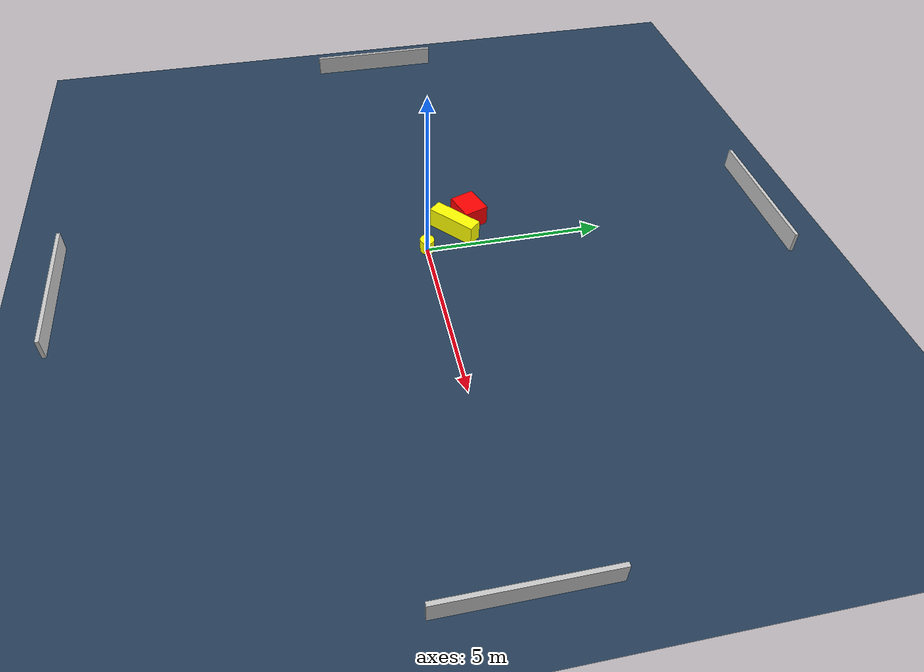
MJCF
<?xml version="1.0" ?>
<mujoco model="generated_environment">
  <option timestep="0.01" integrator="RK4" cone="elliptic"/>
  <default>
    <geom density="1"/>
  </default>
  <asset>
    <texture builtin="gradient" height="3072" name="skybox" rgb1="0.3 0.5 0.7" rgb2="0 0 0" type="skybox" width="512"/>
    <texture builtin="checker" height="300" name="groundplane" rgb1="0.2 0.3 0.4" rgb2="0.1 0.2 0.3" type="2d" width="300"/>
    <material name="groundplane" reflectance="0.2" texrepeat="5 5" texture="groundplane"/>
  </asset>
  <worldbody>
    <light dir="0 0 -1" directional="true" pos="0 0 1.5"/>
    <geom condim="3" friction="0.5 0.005 0.001" material="groundplane" name="floor" pos="0 0 0" size="0 0 0.05" type="plane"/>
    <body name="walls">
      <geom name="wall_1" condim="4" pos="-10.0 0.0 0.3" rgba="0.800000011920929 0.800000011920929 0.800000011920929 1.0" size="0.05 2.0 0.3" type="box"/>
      <geom name="wall_2" condim="4" pos="10.0 0.0 0.3" rgba="0.800000011920929 0.800000011920929 0.800000011920929 1.0" size="0.05 2.0 0.3" type="box"/>
      <geom name="wall_3" condim="4" pos="0.0 -10.0 0.3" rgba="0.800000011920929 0.800000011920929 0.800000011920929 1.0" size="2.0 0.05 0.3" type="box"/>
      <geom name="wall_4" condim="4" pos="0.0 10.0 0.3" rgba="0.800000011920929 0.800000011920929 0.800000011920929 1.0" size="2.0 0.05 0.3" type="box"/>
    </body>
    <body name="robot">
      <joint name="joint_x" type="slide" pos="0 0 0" axis="1 0 0"/>
      <joint name="joint_y" type="slide" pos="0 0 0" axis="0 1 0"/>
      <geom name="robot" type="cylinder" pos="0.0 0.0 0.2" size="0.2 0.2 0.0" mass="5.0" friction="1.0 0.005 0.0001" condim="4" rgba="1.0 1.0 0.0 1.0"/>
    </body>
    <body name="obstacle_1_movable">
      <geom name="obstacle_1_movable" condim="4" pos="-0.6195557601067947 0.914689505202619 0.3" euler="0 0 221.46068101440062" friction="0.0 0.005 0.001" rgba="1.0 1.0 0.0 1.0" size="0.7138746350239737 0.20721465849006893 0.3" type="box" mass="0.1"/>
      <joint type="free"/>
    </body>
    <body name="obstacle_2_static">
      <geom name="obstacle_2_static" condim="4" pos="-1.0823765942471284 1.4397341833887038 0.3" euler="0 0 288.7678698359537" friction="0.0 0.005 0.001" rgba="1.0 0.0 0.0 1.0" size="0.3542167555253153 0.4184635416095581 0.3" type="box"/>
    </body>
  </worldbody>
  <actuator>
    <motor name="actuator_x" joint="joint_x" gear="1" ctrlrange="-1 1"/>
    <motor name="actuator_y" joint="joint_y" gear="1" ctrlrange="-1 1"/>
  </actuator>
</mujoco>
